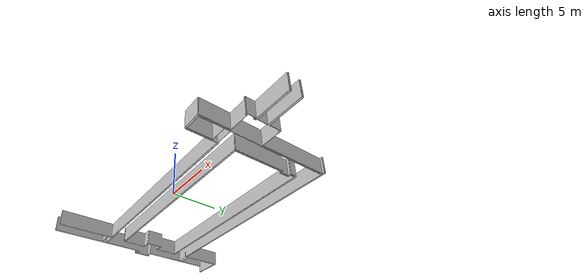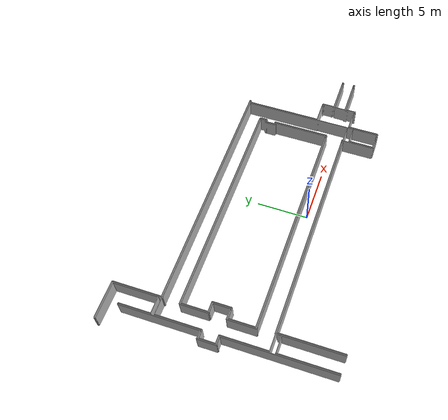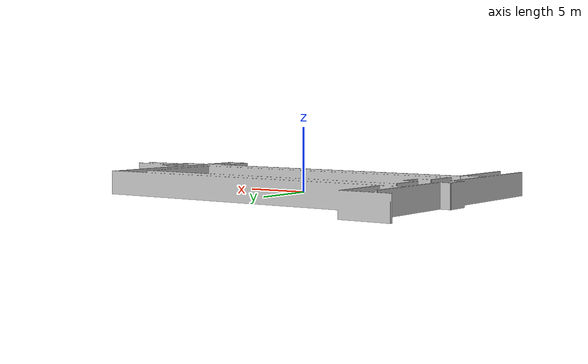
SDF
<?xml version='1.0'?>
<sdf version='1.8'>
  <model name='levine_hall'>
    <pose>0 0 0 0 0 0</pose>
    <link name='levine_hall'>
      <collision name='levine_collision'>
        <geometry>
          <mesh>
            <uri>package://roboracer_description/models/levine_hall/levine_hall.stl</uri>
          </mesh>
        </geometry>
        <pose>0 0 0 0 0 0</pose>
      </collision>
      <visual name='levine_visual'>
        <geometry>
          <mesh>
            <uri>package://roboracer_description/models/levine_hall/levine_hall.stl</uri>
          </mesh>
        </geometry>
      </visual>
    </link>
  </model>
</sdf>
